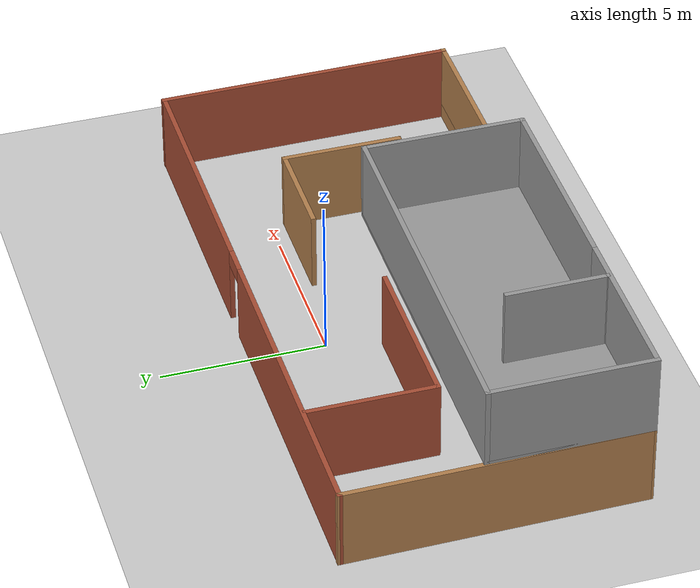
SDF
<sdf version="1.7">
 <world name="default">
  <light name="sun" type="directional">
   <pose>0 0 10 0 -0 0</pose>
   <diffuse>0.8 0.8 0.8 1</diffuse>
   <specular>0.2 0.2 0.2 1</specular>
   <attenuation>
    <range>1000</range>
    <constant>0.9</constant>
    <linear>0.01</linear>
    <quadratic>0.001</quadratic>
   </attenuation>
   <direction>-0.5 0.1 -0.9</direction>
   <spot><inner_angle>0</inner_angle><outer_angle>0</outer_angle><falloff>0</falloff></spot>
  </light>
  <model name="ground_plane">
   <static>1</static>
   <link name="link">
    <collision name="collision">
     <geometry><plane><normal>0 0 1</normal><size>100 100</size></plane></geometry>
     <surface>
      <contact><collide_bitmask>65535</collide_bitmask></contact>
      <friction><ode><mu>100</mu><mu2>50</mu2></ode></friction>
     </surface>
    </collision>
    <visual name="visual">
     <cast_shadows>0</cast_shadows>
     <geometry><plane><normal>0 0 1</normal><size>100 100</size></plane></geometry>
     <material>
      <script><uri>file://media/materials/scripts/gazebo.material</uri><name>Gazebo/Grey</name></script>
     </material>
    </visual>
   </link>
  </model>
  <gravity>0 0 -9.8</gravity>
  <magnetic_field>6e-06 2.3e-05 -4.2e-05</magnetic_field>
  <atmosphere type="adiabatic"/>
  <physics type="ode">
   <max_step_size>0.001</max_step_size>
   <real_time_factor>1</real_time_factor>
   <real_time_update_rate>1000</real_time_update_rate>
  </physics>
  <scene><ambient>0.4 0.4 0.4 1</ambient><background>0.7 0.7 0.7 1</background><shadows>1</shadows></scene>
  <audio><device>default</device></audio>
  <spherical_coordinates>
   <surface_model>EARTH_WGS84</surface_model>
   <latitude_deg>0</latitude_deg>
   <longitude_deg>0</longitude_deg>
   <elevation>0</elevation>
   <heading_deg>0</heading_deg>
  </spherical_coordinates>
  <model name="myworld">
   <pose>0.483572 -2.26517 0 0 -0 0</pose>
   <link name="Floor_0">
    <pose>-3.71996 -2.11595 2.5 0 -0 0</pose>
    <visual name="Floor_0_Visual_0">
     <pose>-5.15075 0 0.05 0 -0 0</pose>
     <geometry><box><size>1.4485 5 0.1</size></box></geometry>
     <material>
      <script><uri>file://media/materials/scripts/gazebo.material</uri><name>Gazebo/Grey</name></script>
      <ambient>1 1 1 1</ambient>
     </material>
     <meta><layer>1</layer></meta>
    </visual>
    <collision name="Floor_0_Collision_0">
     <geometry><box><size>1.4485 5 0.1</size></box></geometry>
     <pose>-5.15075 0 0.05 0 -0 0</pose>
    </collision>
    <visual name="Floor_0_Visual_1">
     <pose>0.724248 -2.44446 0.05 0 -0 0</pose>
     <geometry><box><size>10.3015 0.111083 0.1</size></box></geometry>
     <material>
      <script><uri>file://media/materials/scripts/gazebo.material</uri><name>Gazebo/Grey</name></script>
      <ambient>1 1 1 1</ambient>
     </material>
     <meta><layer>1</layer></meta>
    </visual>
    <collision name="Floor_0_Collision_1">
     <geometry><box><size>10.3015 0.111083 0.1</size></box></geometry>
     <pose>0.724248 -2.44446 0.05 0 -0 0</pose>
    </collision>
    <visual name="Floor_0_Visual_2">
     <pose>1.345 0.055541 0.05 0 -0 0</pose>
     <geometry><box><size>9.06 4.88892 0.1</size></box></geometry>
     <material>
      <script><uri>file://media/materials/scripts/gazebo.material</uri><name>Gazebo/Grey</name></script>
      <ambient>1 1 1 1</ambient>
     </material>
     <meta><layer>1</layer></meta>
    </visual>
    <collision name="Floor_0_Collision_2">
     <geometry><box><size>9.06 4.88892 0.1</size></box></geometry>
     <pose>1.345 0.055541 0.05 0 -0 0</pose>
    </collision>
    <visual name="Floor_0_Visual_3">
     <pose>-3.80575 1.70204 0.05 0 -0 0</pose>
     <geometry><box><size>1.2415 1.59592 0.1</size></box></geometry>
     <material>
      <script><uri>file://media/materials/scripts/gazebo.material</uri><name>Gazebo/Grey</name></script>
      <ambient>1 1 1 1</ambient>
     </material>
     <meta><layer>1</layer></meta>
    </visual>
    <collision name="Floor_0_Collision_3">
     <geometry><box><size>1.2415 1.59592 0.1</size></box></geometry>
     <pose>-3.80575 1.70204 0.05 0 -0 0</pose>
    </collision>
   </link>
   <link name="Stairs_3">
    <visual name="Stairs_3_Visual_0">
     <pose>-7.52572 -1.32164 0.083333 0 -0 0</pose>
     <geometry><box><size>1.2415 0.219533 0.166667</size></box></geometry>
     <material>
      <script><uri>file://media/materials/scripts/gazebo.material</uri><name>Gazebo/Wood</name></script>
      <ambient>1 1 1 1</ambient>
     </material>
     <meta><layer>0</layer></meta>
    </visual>
    <collision name="Stairs_3_Collision_0">
     <geometry><box><size>1.2415 0.219533 0.166667</size></box></geometry>
     <pose>-7.52572 -1.32164 0.083333 0 -0 0</pose>
    </collision>
    <visual name="Stairs_3_Visual_1">
     <pose>-7.52572 -1.54117 0.25 0 -0 0</pose>
     <geometry><box><size>1.2415 0.219533 0.166667</size></box></geometry>
     <material>
      <script><uri>file://media/materials/scripts/gazebo.material</uri><name>Gazebo/Wood</name></script>
      <ambient>1 1 1 1</ambient>
     </material>
     <meta><layer>0</layer></meta>
    </visual>
    <collision name="Stairs_3_Collision_1">
     <geometry><box><size>1.2415 0.219533 0.166667</size></box></geometry>
     <pose>-7.52572 -1.54117 0.25 0 -0 0</pose>
    </collision>
    <visual name="Stairs_3_Visual_2">
     <pose>-7.52572 -1.7607 0.416667 0 -0 0</pose>
     <geometry><box><size>1.2415 0.219533 0.166667</size></box></geometry>
     <material>
      <script><uri>file://media/materials/scripts/gazebo.material</uri><name>Gazebo/Wood</name></script>
      <ambient>1 1 1 1</ambient>
     </material>
     <meta><layer>0</layer></meta>
    </visual>
    <collision name="Stairs_3_Collision_2">
     <geometry><box><size>1.2415 0.219533 0.166667</size></box></geometry>
     <pose>-7.52572 -1.7607 0.416667 0 -0 0</pose>
    </collision>
    <visual name="Stairs_3_Visual_3">
     <pose>-7.52572 -1.98024 0.583333 0 -0 0</pose>
     <geometry><box><size>1.2415 0.219533 0.166667</size></box></geometry>
     <material>
      <script><uri>file://media/materials/scripts/gazebo.material</uri><name>Gazebo/Wood</name></script>
      <ambient>1 1 1 1</ambient>
     </material>
     <meta><layer>0</layer></meta>
    </visual>
    <collision name="Stairs_3_Collision_3">
     <geometry><box><size>1.2415 0.219533 0.166667</size></box></geometry>
     <pose>-7.52572 -1.98024 0.583333 0 -0 0</pose>
    </collision>
    <visual name="Stairs_3_Visual_4">
     <pose>-7.52572 -2.19977 0.75 0 -0 0</pose>
     <geometry><box><size>1.2415 0.219533 0.166667</size></box></geometry>
     <material>
      <script><uri>file://media/materials/scripts/gazebo.material</uri><name>Gazebo/Wood</name></script>
      <ambient>1 1 1 1</ambient>
     </material>
     <meta><layer>0</layer></meta>
    </visual>
    <collision name="Stairs_3_Collision_4">
     <geometry><box><size>1.2415 0.219533 0.166667</size></box></geometry>
     <pose>-7.52572 -2.19977 0.75 0 -0 0</pose>
    </collision>
    <visual name="Stairs_3_Visual_5">
     <pose>-7.52572 -2.4193 0.916667 0 -0 0</pose>
     <geometry><box><size>1.2415 0.219533 0.166667</size></box></geometry>
     <material>
      <script><uri>file://media/materials/scripts/gazebo.material</uri><name>Gazebo/Wood</name></script>
      <ambient>1 1 1 1</ambient>
     </material>
     <meta><layer>0</layer></meta>
    </visual>
    <collision name="Stairs_3_Collision_5">
     <geometry><box><size>1.2415 0.219533 0.166667</size></box></geometry>
     <pose>-7.52572 -2.4193 0.916667 0 -0 0</pose>
    </collision>
    <visual name="Stairs_3_Visual_6">
     <pose>-7.52572 -2.63884 1.08333 0 -0 0</pose>
     <geometry><box><size>1.2415 0.219533 0.166667</size></box></geometry>
     <material>
      <script><uri>file://media/materials/scripts/gazebo.material</uri><name>Gazebo/Wood</name></script>
      <ambient>1 1 1 1</ambient>
     </material>
     <meta><layer>0</layer></meta>
    </visual>
    <collision name="Stairs_3_Collision_6">
     <geometry><box><size>1.2415 0.219533 0.166667</size></box></geometry>
     <pose>-7.52572 -2.63884 1.08333 0 -0 0</pose>
    </collision>
    <visual name="Stairs_3_Visual_7">
     <pose>-7.52572 -2.85837 1.25 0 -0 0</pose>
     <geometry><box><size>1.2415 0.219533 0.166667</size></box></geometry>
     <material>
      <script><uri>file://media/materials/scripts/gazebo.material</uri><name>Gazebo/Wood</name></script>
      <ambient>1 1 1 1</ambient>
     </material>
     <meta><layer>0</layer></meta>
    </visual>
    <collision name="Stairs_3_Collision_7">
     <geometry><box><size>1.2415 0.219533 0.166667</size></box></geometry>
     <pose>-7.52572 -2.85837 1.25 0 -0 0</pose>
    </collision>
    <visual name="Stairs_3_Visual_8">
     <pose>-7.52572 -3.0779 1.41667 0 -0 0</pose>
     <geometry><box><size>1.2415 0.219533 0.166667</size></box></geometry>
     <material>
      <script><uri>file://media/materials/scripts/gazebo.material</uri><name>Gazebo/Wood</name></script>
      <ambient>1 1 1 1</ambient>
     </material>
     <meta><layer>0</layer></meta>
    </visual>
    <collision name="Stairs_3_Collision_8">
     <geometry><box><size>1.2415 0.219533 0.166667</size></box></geometry>
     <pose>-7.52572 -3.0779 1.41667 0 -0 0</pose>
    </collision>
    <visual name="Stairs_3_Visual_9">
     <pose>-7.52572 -3.29744 1.58333 0 -0 0</pose>
     <geometry><box><size>1.2415 0.219533 0.166667</size></box></geometry>
     <material>
      <script><uri>file://media/materials/scripts/gazebo.material</uri><name>Gazebo/Wood</name></script>
      <ambient>1 1 1 1</ambient>
     </material>
     <meta><layer>0</layer></meta>
    </visual>
    <collision name="Stairs_3_Collision_9">
     <geometry><box><size>1.2415 0.219533 0.166667</size></box></geometry>
     <pose>-7.52572 -3.29744 1.58333 0 -0 0</pose>
    </collision>
    <visual name="Stairs_3_Visual_10">
     <pose>-7.52572 -3.51697 1.75 0 -0 0</pose>
     <geometry><box><size>1.2415 0.219533 0.166667</size></box></geometry>
     <material>
      <script><uri>file://media/materials/scripts/gazebo.material</uri><name>Gazebo/Wood</name></script>
      <ambient>1 1 1 1</ambient>
     </material>
     <meta><layer>0</layer></meta>
    </visual>
    <collision name="Stairs_3_Collision_10">
     <geometry><box><size>1.2415 0.219533 0.166667</size></box></geometry>
     <pose>-7.52572 -3.51697 1.75 0 -0 0</pose>
    </collision>
    <visual name="Stairs_3_Visual_11">
     <pose>-7.52572 -3.7365 1.91667 0 -0 0</pose>
     <geometry><box><size>1.2415 0.219533 0.166667</size></box></geometry>
     <material>
      <script><uri>file://media/materials/scripts/gazebo.material</uri><name>Gazebo/Wood</name></script>
      <ambient>1 1 1 1</ambient>
     </material>
     <meta><layer>0</layer></meta>
    </visual>
    <collision name="Stairs_3_Collision_11">
     <geometry><box><size>1.2415 0.219533 0.166667</size></box></geometry>
     <pose>-7.52572 -3.7365 1.91667 0 -0 0</pose>
    </collision>
    <visual name="Stairs_3_Visual_12">
     <pose>-7.52572 -3.95604 2.08333 0 -0 0</pose>
     <geometry><box><size>1.2415 0.219533 0.166667</size></box></geometry>
     <material>
      <script><uri>file://media/materials/scripts/gazebo.material</uri><name>Gazebo/Wood</name></script>
      <ambient>1 1 1 1</ambient>
     </material>
     <meta><layer>0</layer></meta>
    </visual>
    <collision name="Stairs_3_Collision_12">
     <geometry><box><size>1.2415 0.219533 0.166667</size></box></geometry>
     <pose>-7.52572 -3.95604 2.08333 0 -0 0</pose>
    </collision>
    <visual name="Stairs_3_Visual_13">
     <pose>-7.52572 -4.17557 2.25 0 -0 0</pose>
     <geometry><box><size>1.2415 0.219533 0.166667</size></box></geometry>
     <material>
      <script><uri>file://media/materials/scripts/gazebo.material</uri><name>Gazebo/Wood</name></script>
      <ambient>1 1 1 1</ambient>
     </material>
     <meta><layer>0</layer></meta>
    </visual>
    <collision name="Stairs_3_Collision_13">
     <geometry><box><size>1.2415 0.219533 0.166667</size></box></geometry>
     <pose>-7.52572 -4.17557 2.25 0 -0 0</pose>
    </collision>
    <visual name="Stairs_3_Visual_14">
     <pose>-7.52572 -4.3951 2.41667 0 -0 0</pose>
     <geometry><box><size>1.2415 0.219533 0.166667</size></box></geometry>
     <material>
      <script><uri>file://media/materials/scripts/gazebo.material</uri><name>Gazebo/Wood</name></script>
      <ambient>1 1 1 1</ambient>
     </material>
     <meta><layer>0</layer></meta>
    </visual>
    <collision name="Stairs_3_Collision_14">
     <geometry><box><size>1.2415 0.219533 0.166667</size></box></geometry>
     <pose>-7.52572 -4.3951 2.41667 0 -0 0</pose>
    </collision>
   </link>
   <link name="Wall_0">
    <pose>2.67129 -4.5237 0 0 -0 0.002485</pose>
    <visual name="Wall_0_Visual_0">
     <pose>-5.57138 0 1.25 0 -0 0</pose>
     <geometry><box><size>2.88979 0.15 2.5</size></box></geometry>
     <material>
      <script><uri>file://media/materials/scripts/gazebo.material</uri><name>Gazebo/Wood</name></script>
      <ambient>1 1 1 1</ambient>
     </material>
     <meta><layer>0</layer></meta>
    </visual>
    <collision name="Wall_0_Collision_0">
     <geometry><box><size>2.88979 0.15 2.5</size></box></geometry>
     <pose>-5.57138 0 1.25 0 -0 0</pose>
    </collision>
    <visual name="Wall_0_Visual_1">
     <pose>1.44489 0 0.25 0 -0 0</pose>
     <geometry><box><size>11.1428 0.15 0.5</size></box></geometry>
     <material>
      <script><uri>file://media/materials/scripts/gazebo.material</uri><name>Gazebo/Wood</name></script>
      <ambient>1 1 1 1</ambient>
     </material>
     <meta><layer>0</layer></meta>
    </visual>
    <collision name="Wall_0_Collision_1">
     <geometry><box><size>11.1428 0.15 0.5</size></box></geometry>
     <pose>1.44489 0 0.25 0 -0 0</pose>
    </collision>
    <visual name="Wall_0_Visual_2">
     <pose>1.84489 0 1.5 0 -0 0</pose>
     <geometry><box><size>10.3428 0.15 2</size></box></geometry>
     <material>
      <script><uri>file://media/materials/scripts/gazebo.material</uri><name>Gazebo/Wood</name></script>
      <ambient>1 1 1 1</ambient>
     </material>
     <meta><layer>0</layer></meta>
    </visual>
    <collision name="Wall_0_Collision_2">
     <geometry><box><size>10.3428 0.15 2</size></box></geometry>
     <pose>1.84489 0 1.5 0 -0 0</pose>
    </collision>
    <visual name="Wall_0_Visual_3">
     <pose>-3.72648 0 1.9 0 -0 0</pose>
     <geometry><box><size>0.8 0.15 1.2</size></box></geometry>
     <material>
      <script><uri>file://media/materials/scripts/gazebo.material</uri><name>Gazebo/Wood</name></script>
      <ambient>1 1 1 1</ambient>
     </material>
     <meta><layer>0</layer></meta>
    </visual>
    <collision name="Wall_0_Collision_3">
     <geometry><box><size>0.8 0.15 1.2</size></box></geometry>
     <pose>-3.72648 0 1.9 0 -0 0</pose>
    </collision>
   </link>
   <link name="Wall_10">
    <collision name="Wall_10_Collision">
     <geometry><box><size>11.75 0.15 2.5</size></box></geometry>
     <pose>0 0 1.25 0 -0 0</pose>
    </collision>
    <visual name="Wall_10_Visual">
     <pose>0 0 1.25 0 -0 0</pose>
     <geometry><box><size>11.75 0.15 2.5</size></box></geometry>
     <material>
      <script><uri>file://media/materials/scripts/gazebo.material</uri><name>Gazebo/Grey</name></script>
      <ambient>1 1 1 1</ambient>
     </material>
     <meta><layer>1</layer></meta>
    </visual>
    <pose>-3.71996 0.309047 2.5 0 -0 3.14159</pose>
   </link>
   <link name="Wall_11">
    <collision name="Wall_11_Collision">
     <geometry><box><size>5 0.15 2.5</size></box></geometry>
     <pose>0 0 1.25 0 -0 0</pose>
    </collision>
    <visual name="Wall_11_Visual">
     <pose>0 0 1.25 0 -0 0</pose>
     <geometry><box><size>5 0.15 2.5</size></box></geometry>
     <material>
      <script><uri>file://media/materials/scripts/gazebo.material</uri><name>Gazebo/Grey</name></script>
      <ambient>1 1 1 1</ambient>
     </material>
     <meta><layer>1</layer></meta>
    </visual>
    <pose>-9.51996 -2.11595 2.5 0 -0 -1.5708</pose>
   </link>
   <link name="Wall_12">
    <collision name="Wall_12_Collision">
     <geometry><box><size>5.4 0.15 2.5</size></box></geometry>
     <pose>0 0 1.25 0 -0 0</pose>
    </collision>
    <visual name="Wall_12_Visual">
     <pose>0 0 1.25 0 -0 0</pose>
     <geometry><box><size>5.4 0.15 2.5</size></box></geometry>
     <material>
      <script><uri>file://media/materials/scripts/gazebo.material</uri><name>Gazebo/Grey</name></script>
      <ambient>1 1 1 1</ambient>
     </material>
     <meta><layer>1</layer></meta>
    </visual>
    <pose>-6.89496 -4.54095 2.5 0 -0 0</pose>
   </link>
   <link name="Wall_13">
    <collision name="Wall_13_Collision">
     <geometry><box><size>3 0.15 2.5</size></box></geometry>
     <pose>0 0 1.25 0 -0 0</pose>
    </collision>
    <visual name="Wall_13_Visual">
     <pose>0 0 1.25 0 -0 0</pose>
     <geometry><box><size>3 0.15 2.5</size></box></geometry>
     <material>
      <script><uri>file://media/materials/scripts/gazebo.material</uri><name>Gazebo/Grey</name></script>
      <ambient>1 1 1 1</ambient>
     </material>
     <meta><layer>1</layer></meta>
    </visual>
    <pose>-5.64996 -2.93595 2.5 0 -0 -1.5708</pose>
   </link>
   <link name="Wall_14">
    <collision name="Wall_14_Collision">
     <geometry><box><size>0.25 0.15 2.5</size></box></geometry>
     <pose>0 0 1.25 0 -0 0</pose>
    </collision>
    <visual name="Wall_14_Visual">
     <pose>0 0 1.25 0 -0 0</pose>
     <geometry><box><size>0.25 0.15 2.5</size></box></geometry>
     <material>
      <script><uri>file://media/materials/scripts/gazebo.material</uri><name>Gazebo/Grey</name></script>
      <ambient>1 1 1 1</ambient>
     </material>
     <meta><layer>1</layer></meta>
    </visual>
    <pose>-5.64996 -4.41095 2.5 0 -0 -1.5708</pose>
   </link>
   <link name="Wall_16">
    <collision name="Wall_16_Collision">
     <geometry><box><size>4 0.15 2.5</size></box></geometry>
     <pose>0 0 1.25 0 -0 0</pose>
    </collision>
    <visual name="Wall_16_Visual">
     <pose>0 0 1.25 0 -0 0</pose>
     <geometry><box><size>4 0.15 2.5</size></box></geometry>
     <material>
      <script><uri>file://media/materials/scripts/gazebo.material</uri><name>Gazebo/Bricks</name></script>
      <ambient>1 1 1 1</ambient>
     </material>
     <meta><layer>0</layer></meta>
    </visual>
    <pose>-6.02839 2.50883 0 0 -0 -1.5708</pose>
   </link>
   <link name="Wall_17">
    <collision name="Wall_17_Collision">
     <geometry><box><size>5.25 0.15 2.5</size></box></geometry>
     <pose>0 0 1.25 0 -0 0</pose>
    </collision>
    <visual name="Wall_17_Visual">
     <pose>0 0 1.25 0 -0 0</pose>
     <geometry><box><size>5.25 0.15 2.5</size></box></geometry>
     <material>
      <script><uri>file://media/materials/scripts/gazebo.material</uri><name>Gazebo/Bricks</name></script>
      <ambient>1 1 1 1</ambient>
     </material>
     <meta><layer>0</layer></meta>
    </visual>
    <pose>-3.47839 0.583826 0 0 -0 0</pose>
   </link>
   <link name="Wall_19">
    <collision name="Wall_19_Collision">
     <geometry><box><size>2.75 0.15 2.5</size></box></geometry>
     <pose>0 0 1.25 0 -0 0</pose>
    </collision>
    <visual name="Wall_19_Visual">
     <pose>0 0 1.25 0 -0 0</pose>
     <geometry><box><size>2.75 0.15 2.5</size></box></geometry>
     <material>
      <script><uri>file://media/materials/scripts/gazebo.material</uri><name>Gazebo/Wood</name></script>
      <ambient>1 1 1 1</ambient>
     </material>
     <meta><layer>0</layer></meta>
    </visual>
    <pose>2.94477 -3.10246 0 0 -0 1.5708</pose>
   </link>
   <link name="Wall_20">
    <collision name="Wall_20_Collision">
     <geometry><box><size>2.75 0.15 2.5</size></box></geometry>
     <pose>0 0 1.25 0 -0 0</pose>
    </collision>
    <visual name="Wall_20_Visual">
     <pose>0 0 1.25 0 -0 0</pose>
     <geometry><box><size>2.75 0.15 2.5</size></box></geometry>
     <material>
      <script><uri>file://media/materials/scripts/gazebo.material</uri><name>Gazebo/Wood</name></script>
      <ambient>1 1 1 1</ambient>
     </material>
     <meta><layer>0</layer></meta>
    </visual>
    <pose>4.24477 -1.80246 0 0 -0 0</pose>
   </link>
   <link name="Wall_21">
    <collision name="Wall_21_Collision">
     <geometry><box><size>3.75 0.15 2.5</size></box></geometry>
     <pose>0 0 1.25 0 -0 0</pose>
    </collision>
    <visual name="Wall_21_Visual">
     <pose>0 0 1.25 0 -0 0</pose>
     <geometry><box><size>3.75 0.15 2.5</size></box></geometry>
     <material>
      <script><uri>file://media/materials/scripts/gazebo.material</uri><name>Gazebo/Wood</name></script>
      <ambient>1 1 1 1</ambient>
     </material>
     <meta><layer>0</layer></meta>
    </visual>
    <pose>5.54477 -0.002457 0 0 -0 1.5708</pose>
   </link>
   <link name="Wall_22">
    <collision name="Wall_22_Collision">
     <geometry><box><size>3.25 0.15 2.5</size></box></geometry>
     <pose>0 0 1.25 0 -0 0</pose>
    </collision>
    <visual name="Wall_22_Visual">
     <pose>0 0 1.25 0 -0 0</pose>
     <geometry><box><size>3.25 0.15 2.5</size></box></geometry>
     <material>
      <script><uri>file://media/materials/scripts/gazebo.material</uri><name>Gazebo/Wood</name></script>
      <ambient>1 1 1 1</ambient>
     </material>
     <meta><layer>0</layer></meta>
    </visual>
    <pose>3.99477 1.79754 0 0 -0 3.14159</pose>
   </link>
   <link name="Wall_3">
    <collision name="Wall_3_Collision">
     <geometry><box><size>9.19786 0.15 2.5</size></box></geometry>
     <pose>0 0 1.25 0 -0 0</pose>
    </collision>
    <visual name="Wall_3_Visual">
     <pose>0 0 1.25 0 -0 0</pose>
     <geometry><box><size>9.19786 0.15 2.5</size></box></geometry>
     <material>
      <script><uri>file://media/materials/scripts/gazebo.material</uri><name>Gazebo/Bricks</name></script>
      <ambient>1 1 1 1</ambient>
     </material>
     <meta><layer>0</layer></meta>
    </visual>
    <pose>9.56079 0.017297 0 0 -0 1.57969</pose>
   </link>
   <link name="Wall_4">
    <pose>-0.045714 4.5123 0 0 -0 -3.13979</pose>
    <visual name="Wall_4_Visual_0">
     <pose>-5.63585 0 1.25 0 -0 0</pose>
     <geometry><box><size>8.01082 0.15 2.5</size></box></geometry>
     <material>
      <script><uri>file://media/materials/scripts/gazebo.material</uri><name>Gazebo/Bricks</name></script>
      <ambient>1 1 1 1</ambient>
     </material>
     <meta><layer>0</layer></meta>
    </visual>
    <collision name="Wall_4_Collision_0">
     <geometry><box><size>8.01082 0.15 2.5</size></box></geometry>
     <pose>-5.63585 0 1.25 0 -0 0</pose>
    </collision>
    <visual name="Wall_4_Visual_1">
     <pose>4.45541 0 1.25 0 -0 0</pose>
     <geometry><box><size>10.3717 0.15 2.5</size></box></geometry>
     <material>
      <script><uri>file://media/materials/scripts/gazebo.material</uri><name>Gazebo/Bricks</name></script>
      <ambient>1 1 1 1</ambient>
     </material>
     <meta><layer>0</layer></meta>
    </visual>
    <collision name="Wall_4_Collision_1">
     <geometry><box><size>10.3717 0.15 2.5</size></box></geometry>
     <pose>4.45541 0 1.25 0 -0 0</pose>
    </collision>
    <visual name="Wall_4_Visual_2">
     <pose>-1.18044 0 2.25 0 -0 0</pose>
     <geometry><box><size>0.9 0.15 0.5</size></box></geometry>
     <material>
      <script><uri>file://media/materials/scripts/gazebo.material</uri><name>Gazebo/Bricks</name></script>
      <ambient>1 1 1 1</ambient>
     </material>
     <meta><layer>0</layer></meta>
    </visual>
    <collision name="Wall_4_Collision_2">
     <geometry><box><size>0.9 0.15 0.5</size></box></geometry>
     <pose>-1.18044 0 2.25 0 -0 0</pose>
    </collision>
   </link>
   <link name="Wall_5">
    <collision name="Wall_5_Collision">
     <geometry><box><size>9.19797 0.15 2.5</size></box></geometry>
     <pose>0 0 1.25 0 -0 0</pose>
    </collision>
    <visual name="Wall_5_Visual">
     <pose>0 0 1.25 0 -0 0</pose>
     <geometry><box><size>9.19797 0.15 2.5</size></box></geometry>
     <material>
      <script><uri>file://media/materials/scripts/gazebo.material</uri><name>Gazebo/Wood</name></script>
      <ambient>1 1 1 1</ambient>
     </material>
     <meta><layer>0</layer></meta>
    </visual>
    <pose>-9.56596 -0.017202 0 0 -0 -1.56063</pose>
   </link>
   <link name="Wall_6">
    <collision name="Wall_6_Collision">
     <geometry><box><size>5.4 0.15 2.5</size></box></geometry>
     <pose>0 0 1.25 0 -0 0</pose>
    </collision>
    <visual name="Wall_6_Visual">
     <pose>0 0 1.25 0 -0 0</pose>
     <geometry><box><size>5.4 0.15 2.5</size></box></geometry>
     <material>
      <script><uri>file://media/materials/scripts/gazebo.material</uri><name>Gazebo/Wood</name></script>
      <ambient>1 1 1 1</ambient>
     </material>
     <meta><layer>0</layer></meta>
    </visual>
    <pose>-6.89496 -4.54095 0 0 -0 0</pose>
   </link>
   <link name="Wall_8">
    <collision name="Wall_8_Collision">
     <geometry><box><size>6.5 0.15 2.5</size></box></geometry>
     <pose>0 0 1.25 0 -0 0</pose>
    </collision>
    <visual name="Wall_8_Visual">
     <pose>0 0 1.25 0 -0 0</pose>
     <geometry><box><size>6.5 0.15 2.5</size></box></geometry>
     <material>
      <script><uri>file://media/materials/scripts/gazebo.material</uri><name>Gazebo/Grey</name></script>
      <ambient>1 1 1 1</ambient>
     </material>
     <meta><layer>1</layer></meta>
    </visual>
    <pose>-1.09496 -4.54095 2.5 0 -0 0</pose>
   </link>
   <link name="Wall_9">
    <collision name="Wall_9_Collision">
     <geometry><box><size>5 0.15 2.5</size></box></geometry>
     <pose>0 0 1.25 0 -0 0</pose>
    </collision>
    <visual name="Wall_9_Visual">
     <pose>0 0 1.25 0 -0 0</pose>
     <geometry><box><size>5 0.15 2.5</size></box></geometry>
     <material>
      <script><uri>file://media/materials/scripts/gazebo.material</uri><name>Gazebo/Grey</name></script>
      <ambient>1 1 1 1</ambient>
     </material>
     <meta><layer>1</layer></meta>
    </visual>
    <pose>2.08004 -2.11595 2.5 0 -0 1.5708</pose>
   </link>
   <static>1</static>
  </model>
 </world>
</sdf>
